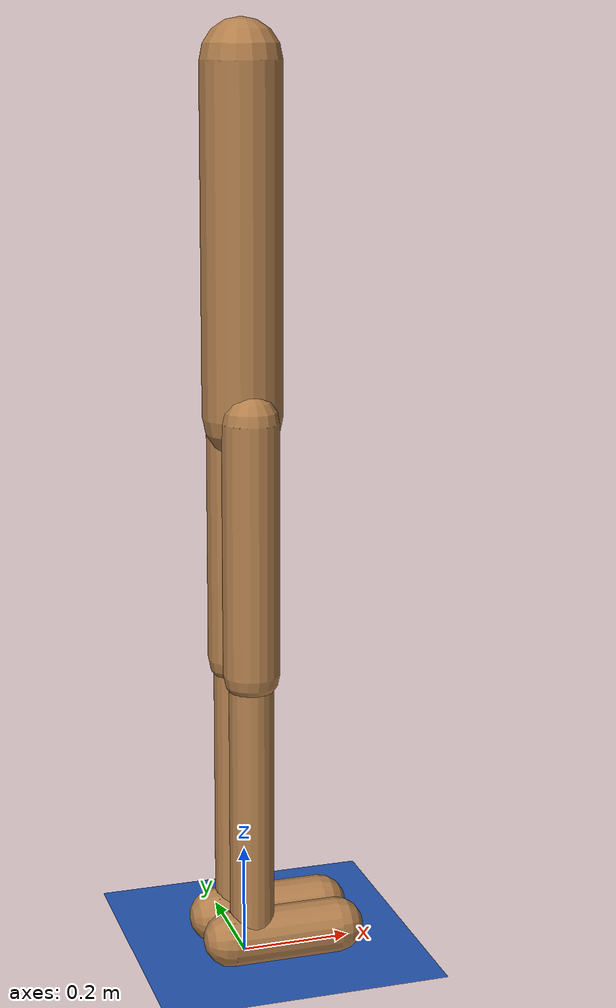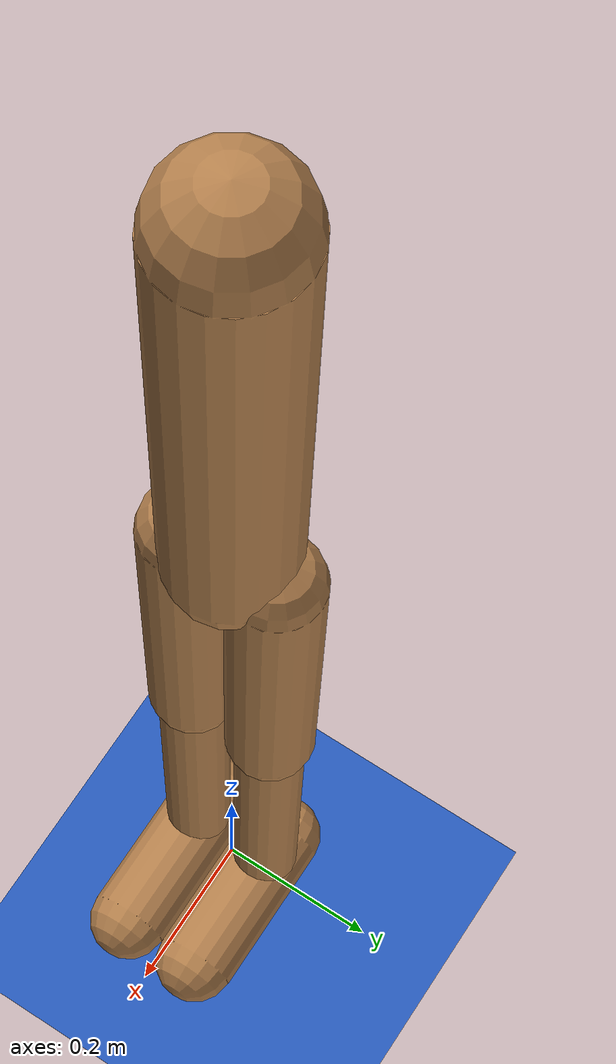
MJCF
<mujoco model="Walker Locomotion">
  <include file="common.xml"/>
  <include file="walker_modified.xml" />

  <size memory="100K"/>

  <custom>
    <!-- agent -->
    <numeric name="agent_planner" data="2" />
    <numeric name="agent_horizon" data="0.8" />
    <numeric name="agent_timestep" data="0.01" />
    <numeric name="sampling_spline_points" data="3" />
    <numeric name="sampling_exploration" data="0.5" />
    <numeric name="gradient_spline_points" data="5" />
    <numeric name="residual_Height Goal" data="1.2 0.5 1.2" />
    <numeric name="residual_Speed Goal" data="0 -5.0 5.0" />

    <!-- estimator -->
    <numeric name="estimator" data="0" />
    <numeric name="estimator_sensor_start" data="4" />
    <numeric name="estimator_number_sensor" data="9" />
    <numeric name="estimator_timestep" data="0.005" />
    <numeric name="batch_configuration_length" data="3" />
    <numeric name="batch_scale_prior" data="1.0e-3" />
  </custom>

  <sensor>
    <!-- cost -->
    <user name="Control" dim="6" user="0 0.1 0.0 1.0" />
    <user name="Height" dim="1" user="0 10.0 0.0 10.0" />
    <user name="Rotation" dim="1" user="0 3.0 0.0 5.0" />
    <user name="Speed" dim="1" user="0 1.0 0.0 1.0" />

    <!-- estimator -->
    <jointpos name="rootz" joint="rootz" />
    <jointpos name="rootx" joint="rootx" />
    <jointpos name="rooty" joint="rooty" />
    <jointpos name="right_hip" joint="right_hip" />
    <jointpos name="right_knee" joint="right_knee" />
    <jointpos name="right_ankle" joint="right_ankle" />
    <jointpos name="left_hip" joint="left_hip" />
    <jointpos name="left_knee" joint="left_knee" />
    <jointpos name="left_ankle" joint="left_ankle" />

    <!-- trace -->
    <framepos      name="trace0" objtype="site" objname="torso_site"/>

    <!-- residual -->
    <framepos      name="torso_position" objtype="xbody" objname="torso"/>
    <subtreecom    name="torso_subtreecom" body="torso"/>
    <subtreelinvel name="torso_subtreelinvel" body="torso"/>
    <framezaxis    name="torso_zaxis" objtype="xbody" objname="torso"/>
  </sensor>
</mujoco>

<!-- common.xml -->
<mujoco>

  <visual>
    <headlight ambient=".4 .4 .4" diffuse=".8 .8 .8" specular="0.1 0.1 0.1"/>
    <map znear=".01"/>
    <quality shadowsize="2048"/>
    <global elevation="-15" offwidth="1920" offheight="1080"/>
  </visual>

  <asset>
    <texture name="blue_grid" type="2d" builtin="checker" rgb1=".02 .14 .44" rgb2=".27 .55 1" width="300" height="300" mark="edge" markrgb="1 1 1"/>
    <material name="blue_grid" texture="blue_grid" texrepeat="1 1" texuniform="true" reflectance=".2"/>

    <texture name="grey_grid" type="2d" builtin="checker" rgb1=".26 .26 .26" rgb2=".6 .6 .6" width="300" height="300" mark="edge" markrgb="1 1 1"/>
    <material name="grey_grid" texture="grey_grid" texrepeat="1 1" texuniform="true" reflectance=".2"/>
    <texture name="skybox" type="skybox" builtin="gradient" rgb1=".66 .79 1" rgb2=".9 .91 .93" width="800" height="800"/>

    <material name="self" rgba=".7 .5 .3 1"/>
    <material name="self_default" rgba=".7 .5 .3 1"/>
    <material name="self_highlight" rgba="0 .5 .3 1"/>
    <material name="effector" rgba=".7 .4 .2 1"/>
    <material name="effector_default" rgba=".7 .4 .2 1"/>
    <material name="effector_highlight" rgba="0 .5 .3 1"/>
    <material name="decoration" rgba=".2 .6 .3 1"/>
    <material name="eye" rgba="0 .2 1 1"/>
    <material name="target" rgba=".6 .3 .3 1"/>
    <material name="target_default" rgba=".6 .3 .3 1"/>
    <material name="target_highlight" rgba=".6 .3 .3 .4"/>
    <material name="site" rgba=".5 .5 .5 .3"/>
  </asset>
</mujoco>

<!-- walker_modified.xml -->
<mujoco model="Walker">
  <option timestep="0.0025"/>

  <statistic extent="2" center="0 0 1"/>

  <default>
    <joint damping=".1" armature="0.01" limited="true" solimplimit="0 .99 .01"/>
    <geom contype="1" conaffinity="0" friction=".7 .1 .1"/>
    <motor ctrlrange="-1 1" ctrllimited="true"/>
    <site size="0.01"/>
    <default class="walker">
      <geom material="self" type="capsule"/>
      <joint axis="0 -1 0"/>
    </default>
  </default>

  <worldbody>
    <geom name="floor" type="plane" conaffinity="1" pos="998 0 0" size="1000 .8 .2" material="blue_grid" zaxis="0 0 1"/>
    <camera name="sideon" pos="0 -10 5" fovy="45" mode="targetbody" target="torso" />
    <camera name="float_far"  pos="-4 0 2" xyaxes="0 -1 0 .5 0 1" mode="trackcom" fovy="90"/>
    <body name="torso" pos="0 0 1.3" childclass="walker">
      <light name="light" pos="0 0 2" mode="trackcom"/>
      <camera name="floating"  pos="-2 0 1" xyaxes="0 -1 0 .5 0 1" mode="trackcom" fovy="90"/>
      <camera name="egocentric"  pos=".25 0 .11" xyaxes="0 -1 0 0 0 1" fovy="90" />
      <joint name="rootz" axis="0 0 1" type="slide" limited="false" armature="0" damping="0"/>
      <joint name="rootx" axis="1 0 0" type="slide" limited="false" armature="0" damping="0"/>
      <joint name="rooty" axis="0 1 0" type="hinge" limited="false" armature="0" damping="0"/>
      <geom name="torso" size="0.07 0.3"/>
      <site name="torso_site" pos="0 0 0" size="0.01"/>
      <body name="right_thigh" pos="0 -.05 -0.3">
        <joint name="right_hip" range="-20 100"/>
        <geom name="right_thigh" pos="0 0 -0.225" size="0.05 0.225"/>
        <body name="right_leg" pos="0 0 -0.7">
          <joint name="right_knee" pos="0 0 0.25" range="-150 0"/>
          <geom name="right_leg" size="0.04 0.25"/>
          <body name="right_foot" pos="0.06 0 -0.25">
            <joint name="right_ankle" pos="-0.06 0 0" range="-45 45"/>
            <geom name="right_foot" zaxis="1 0 0" size="0.05 0.1"/>
          </body>
        </body>
      </body>
      <body name="left_thigh" pos="0 .05 -0.3" >
        <joint name="left_hip" range="-20 100"/>
        <geom name="left_thigh" pos="0 0 -0.225" size="0.05 0.225"/>
        <body name="left_leg" pos="0 0 -0.7">
          <joint name="left_knee" pos="0 0 0.25" range="-150 0"/>
          <geom name="left_leg" size="0.04 0.25"/>
          <body name="left_foot" pos="0.06 0 -0.25">
            <joint name="left_ankle" pos="-0.06 0 0" range="-45 45"/>
            <geom name="left_foot" zaxis="1 0 0" size="0.05 0.1"/>
          </body>
        </body>
      </body>
    </body>
  </worldbody>

  <actuator>
    <motor name="right_hip" joint="right_hip" gear="200"/>
    <motor name="right_knee" joint="right_knee" gear="100"/>
    <motor name="right_ankle" joint="right_ankle" gear="40"/>
    <motor name="left_hip" joint="left_hip" gear="200"/>
    <motor name="left_knee" joint="left_knee" gear="100"/>
    <motor name="left_ankle" joint="left_ankle" gear="40"/>
  </actuator>
</mujoco>
